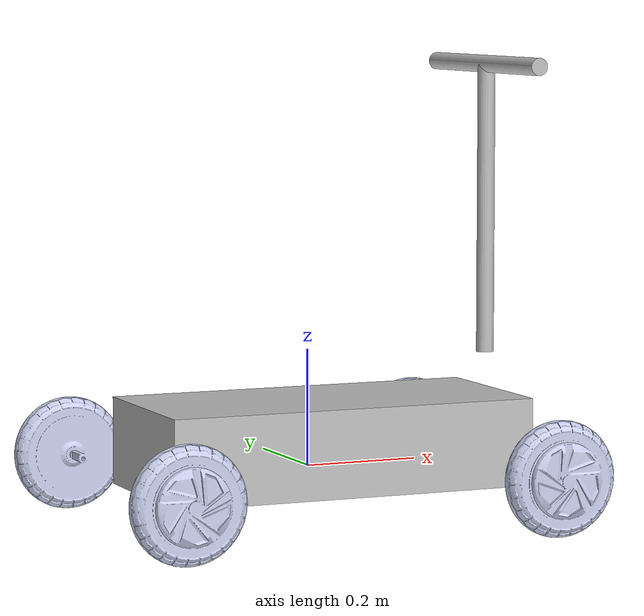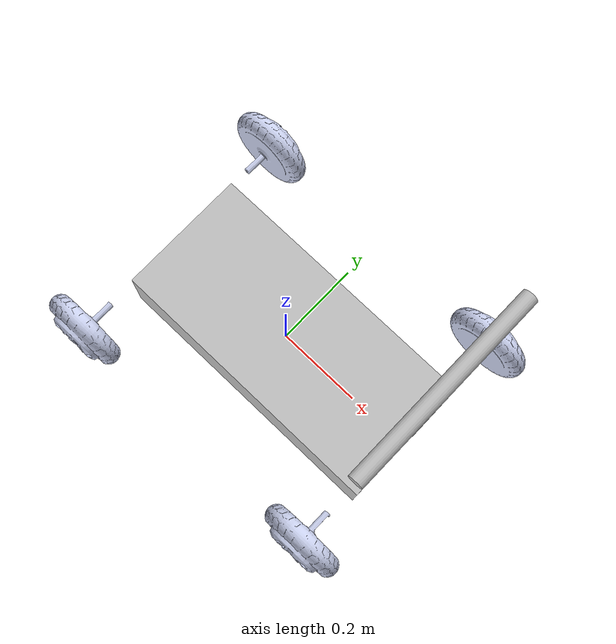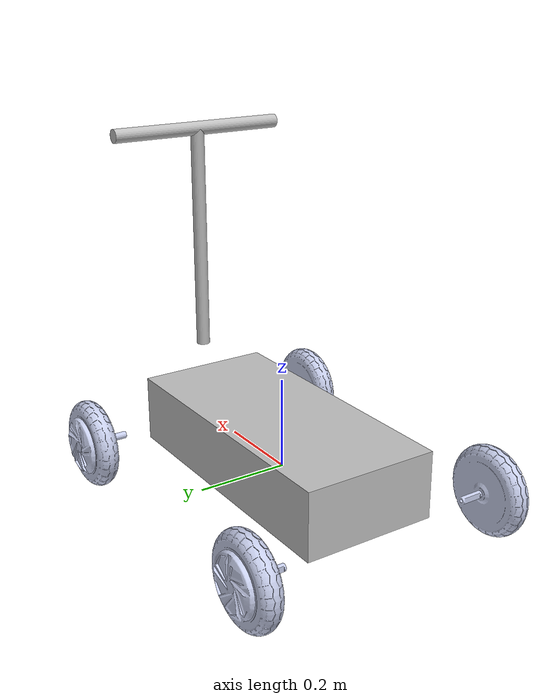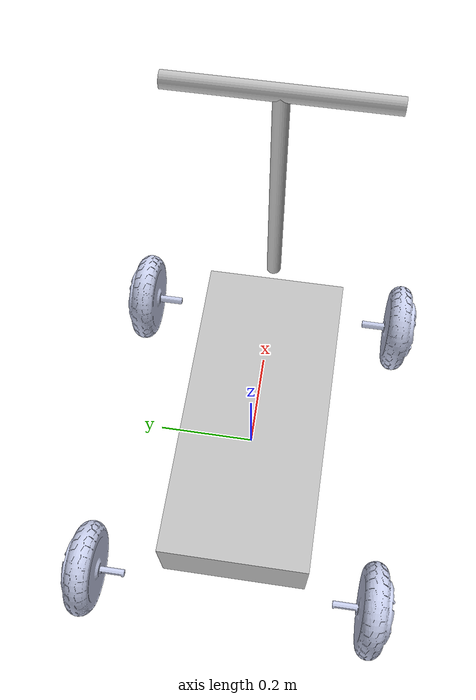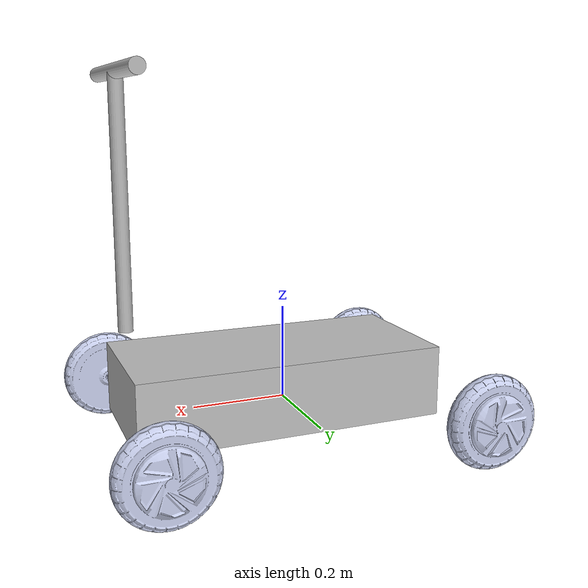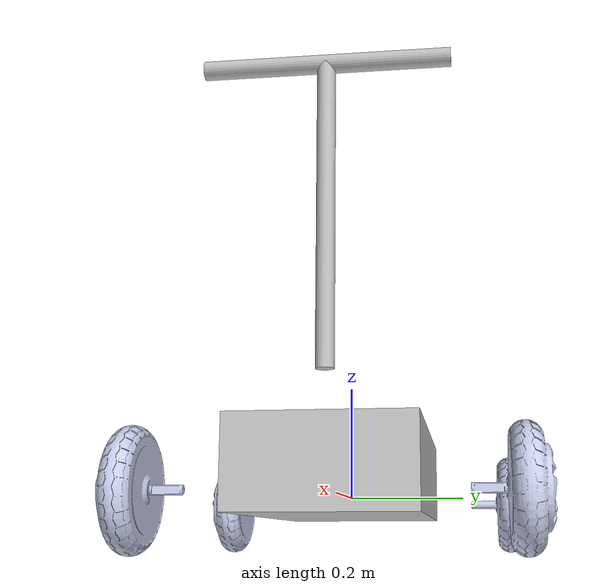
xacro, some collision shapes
<?xml version="1.0"?>
<robot name="my_robot" xmlns:xacro="http://www.ros.org/wiki/xacro">
  <xacro:include filename="inertial_macros.xacro" />

  <!-- BASE_LINK IS NOW AT THE EXACT CENTER OF THE FOUR WHEELS       -->
  <link name="base_link">

  </link>

  <!-- CHASSIS (the old "base") is now attached offset from the      -->
  <!-- centered base_link so everything stays in the same place      -->
  <joint name="chassis_joint" type="fixed">
    <parent link="base_link"/>
    <child link="chassis"/>
    <!-- This moves the entire old robot so base_link ends up in the middle -->
    <origin xyz="-0.3295 0.33054 0" rpy="0 0 0"/>
  </joint>

<link name="chassis">
   <xacro:inertial_box mass="25.0" x="0.6" y="0.4" z="0.2">
        <origin xyz="0.3539 -0.33747 0.041313" rpy="0 0 0"/>
    </xacro:inertial_box>

    <visual>
      <origin xyz="0 0 0" rpy="0 0 0"/>
      <geometry>
        <mesh filename="package://my_robot_description/models/my_robot_description/meshes/base_link.STL"/>
      </geometry>
      <material name="">
        <color rgba="0.75294 0.75294 0.75294 1"/>
      </material>
    </visual>

  <collision>
      <origin xyz="0.3539 -0.33747 0.041313" rpy="0 0 0"/>

      <geometry>
        <box size="0.65 0.30 0.15"/>
      </geometry>
    </collision>
  </link>

  <gazebo reference="chassis">
    <material>Gazebo/DarkGrey</material>
  </gazebo>

  <!-- WHEELS – now attached to the centered base_link               -->

  <!-- BACK LEFT -->
  <joint name="BL_joint" type="continuous">
    <parent link="base_link"/>
    <child link="BL_link"/>
    <origin xyz="-0.3295  0.33054 0" rpy="0 0 0"/>
    <axis xyz="0 1 0"/>
  </joint>

  <!-- BACK RIGHT -->
  <joint name="BR_joint" type="continuous">
    <parent link="base_link"/>
    <child link="BR_link"/>
    <origin xyz="-0.3295 -0.33054 0" rpy="0 0 0"/>
    <axis xyz="0 1 0"/>
  </joint>

  <!-- FRONT LEFT -->
  <joint name="FL_joint" type="continuous">
    <parent link="base_link"/>
    <child link="FL_link"/>
    <origin xyz="0.3295  0.33054 0" rpy="0 0 0"/>
    <axis xyz="0 1 0"/>
  </joint>

  <!-- FRONT RIGHT -->
  <joint name="FR_joint" type="continuous">
    <parent link="base_link"/>
    <child link="FR_link"/>
    <origin xyz="0.3295 -0.33054 0" rpy="0 0 0"/>
    <axis xyz="0 1 0"/>
  </joint>

  <!-- ==================== WHEEL LINKS (unchanged) ==================== -->
  <link name="BL_link">
  <xacro:inertial_cylinder mass="1.43" length="0.05" radius="0.0925">
        <origin xyz="0 0 0" rpy="0 0 0"/>
    </xacro:inertial_cylinder>
    <visual>
      <origin xyz="0 0 0" rpy="0 0 0"/>
      <geometry>
        <mesh filename="package://my_robot_description/models/my_robot_description/meshes/BL_link.STL"/>
      </geometry>
      <material name=""><color rgba="0.79216 0.81961 0.93333 1"/></material>
    </visual>
    <collision>
      <origin xyz="0 -0.03 0" rpy="${pi/2} 0 0"/>
      <geometry>
        <cylinder radius="0.0925" length="0.05"/>
      </geometry>
    </collision>
  </link>
  <gazebo reference="BL_link">
    <material>Gazebo/Grey</material>
<mu1>1.0</mu1>
    <mu2>0.5</mu2> <fdir1>1 0 0</fdir1>

    <kp>10000000.0</kp> <kd>100.0</kd>     <minDepth>0.001</minDepth>

  </gazebo>

  <link name="BR_link">
   <xacro:inertial_cylinder mass="1.43" length="0.05" radius="0.0925">
        <origin xyz="0 0 0" rpy="0 0 0"/>
    </xacro:inertial_cylinder>
    <visual>
      <origin xyz="0 0 0" rpy="0 0 0"/>
      <geometry>
        <mesh filename="package://my_robot_description/models/my_robot_description/meshes/BR_link.STL"/>
      </geometry>
      <material name=""><color rgba="0.79216 0.81961 0.93333 1"/></material>
    </visual>
    <collision>
      <origin xyz="0 0.03 0" rpy="${pi/2} 0 0"/>
      <geometry>
        <cylinder radius="0.0925" length="0.05"/>
      </geometry>
    </collision>
  </link>
  <gazebo reference="BR_link">
    <material>Gazebo/Grey</material>
   <mu1>1.0</mu1>
    <mu2>0.5</mu2> <fdir1>1 0 0</fdir1>

    <kp>10000000.0</kp> <kd>100.0</kd>     <minDepth>0.001</minDepth>

  </gazebo>

  <link name="FL_link">
  <xacro:inertial_cylinder mass="1.43" length="0.05" radius="0.0925">
        <origin xyz="0 0 0" rpy="0 0 0"/>
    </xacro:inertial_cylinder>
    <visual>
      <origin xyz="0 0 0" rpy="0 0 0"/>
      <geometry>
        <mesh filename="package://my_robot_description/models/my_robot_description/meshes/FL_link.STL"/>
      </geometry>
      <material name=""><color rgba="0.79216 0.81961 0.93333 1"/></material>
    </visual>
    <collision>
      <origin xyz="0 -0.03 0" rpy="${pi/2} 0 0"/>
      <geometry>
        <cylinder radius="0.0925" length="0.05"/>
      </geometry>
    </collision>
  </link>
  <gazebo reference="FL_link">
    <material>Gazebo/Grey</material>
   <mu1>1.0</mu1>
    <mu2>0.5</mu2> <fdir1>1 0 0</fdir1>

    <kp>10000000.0</kp> <kd>100.0</kd>     <minDepth>0.001</minDepth>

  </gazebo>

  <link name="FR_link">
   <xacro:inertial_cylinder mass="1.43" length="0.05" radius="0.0925">
        <origin xyz="0 0 0" rpy="0 0 0"/>
    </xacro:inertial_cylinder>
    <visual>
      <origin xyz="0 0 0" rpy="0 0 0"/>
      <geometry>
        <mesh filename="package://my_robot_description/models/my_robot_description/meshes/FR_link.STL"/>
      </geometry>
      <material name=""><color rgba="0.79216 0.81961 0.93333 1"/></material>
    </visual>
   <collision>
      <origin xyz="0 0.03 0" rpy="${pi/2} 0 0"/>
      <geometry>
        <cylinder radius="0.0925" length="0.05"/>
      </geometry>
    </collision>
  </link>
  <gazebo reference="FR_link">
    <material>Gazebo/Grey</material>
 <mu1>1.0</mu1>
    <mu2>0.5</mu2> <fdir1>1 0 0</fdir1>

    <kp>10000000.0</kp> <kd>100.0</kd>     <minDepth>0.001</minDepth>

    <minDepth>0.001</minDepth>
  </gazebo>

  <!-- HANDLE (also moved with the same offset) -->
  <joint name="handle_middle_joint" type="fixed">
    <parent link="base_link"/>
    <child link="handle_middle"/>
    <origin xyz="0.3355 0 0.43" rpy="0 0 0"/>
  </joint>

  <link name="handle_middle">
    <visual>
      <origin xyz="0 0 0"/>
      <geometry><cylinder length="0.5" radius="0.015"/></geometry>
       <material name="">
        <color rgba="0.75294 0.75294 0.75294 1"/>
      </material>
    </visual>
    <collision>
      <origin xyz="0 0 0"/>
      <geometry><cylinder length="0.5" radius="0.015"/></geometry>
    </collision>
    <xacro:inertial_cylinder mass="0.1" length="0.5" radius="0.015">
      <origin xyz="0 0 0" rpy="0 0 0"/>
    </xacro:inertial_cylinder>
  </link>
  <gazebo reference="handle_middle"><material>Gazebo/DarkGrey</material></gazebo>

  <joint name="handle_joint" type="fixed">
    <parent link="handle_middle"/>
    <child link="handle"/>
    <origin xyz="0 0 0.25" rpy="${pi/2} 0 0"/>
  </joint>

  <link name="handle">
    <visual>
      <origin xyz="0 0 0"/>
      <geometry><cylinder length="0.4" radius="0.015"/></geometry>
      <material name="">
        <color rgba="0.75294 0.75294 0.75294 1"/>
      </material>
    </visual>
    <collision>
      <origin xyz="0 0 0"/>
      <geometry><cylinder length="0.4" radius="0.015"/></geometry>
    </collision>
    <xacro:inertial_cylinder mass="0.1" length="0.4" radius="0.015">
      <origin xyz="0 0 0" rpy="0 0 0"/>
    </xacro:inertial_cylinder>
  </link>
  <gazebo reference="handle"><material>Gazebo/DarkGrey</material></gazebo>

  <!-- TRANSMISSIONS (unchanged) -->
  <transmission name="left_front_wheel_trans">
    <type>transmission_interface/SimpleTransmission</type>
    <joint name="FL_joint"><hardwareInterface>velocity</hardwareInterface></joint>
    <actuator name="left_front_wheel_motor"><hardwareInterface>velocity</hardwareInterface><mechanicalReduction>1</mechanicalReduction></actuator>
  </transmission>

  <transmission name="left_back_wheel_trans">
    <type>transmission_interface/SimpleTransmission</type>
    <joint name="BL_joint"><hardwareInterface>velocity</hardwareInterface></joint>
    <actuator name="left_back_wheel_motor"><hardwareInterface>velocity</hardwareInterface><mechanicalReduction>1</mechanicalReduction></actuator>
  </transmission>

  <transmission name="right_front_wheel_trans">
    <type>transmission_interface/SimpleTransmission</type>
    <joint name="FR_joint"><hardwareInterface>velocity</hardwareInterface></joint>
    <actuator name="right_front_wheel_motor"><hardwareInterface>velocity</hardwareInterface><mechanicalReduction>1</mechanicalReduction></actuator>
  </transmission>

  <transmission name="right_back_wheel_trans">
    <type>transmission_interface/SimpleTransmission</type>
    <joint name="BR_joint"><hardwareInterface>velocity</hardwareInterface></joint>
    <actuator name="right_back_wheel_motor"><hardwareInterface>velocity</hardwareInterface><mechanicalReduction>1</mechanicalReduction></actuator>
  </transmission>

</robot>

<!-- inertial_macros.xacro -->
<robot xmlns:xacro="http://www.ros.org/wiki/xacro" >

    <xacro:macro name="inertial_sphere" params="mass radius *origin">
        <inertial>
            <xacro:insert_block name="origin"/>
            <mass value="${mass}" />
            <inertia ixx="${(2/5) * mass * (radius*radius)}" ixy="0.0" ixz="0.0"
                    iyy="${(2/5) * mass * (radius*radius)}" iyz="0.0"
                    izz="${(2/5) * mass * (radius*radius)}" />
        </inertial>
    </xacro:macro>

    <xacro:macro name="inertial_box" params="mass x y z *origin">
        <inertial>
            <xacro:insert_block name="origin"/>
            <mass value="${mass}" />
            <inertia ixx="${(1/12) * mass * (y*y + z*z)}" ixy="0.0" ixz="0.0"
                    iyy="${(1/12) * mass * (x*x + z*z)}" iyz="0.0"
                    izz="${(1/12) * mass * (x*x + y*y)}" />
        </inertial>
    </xacro:macro>

    <xacro:macro name="inertial_cylinder" params="mass length radius *origin">
        <inertial>
            <xacro:insert_block name="origin"/>
            <mass value="${mass}" />
            <inertia ixx="${(1/12) * mass * (3*radius*radius + length*length)}" ixy="0.0" ixz="0.0"
                    iyy="${(1/12) * mass * (3*radius*radius + length*length)}" iyz="0.0"
                    izz="${(1/2) * mass * (radius*radius)}" />
        </inertial>
    </xacro:macro>

</robot>
